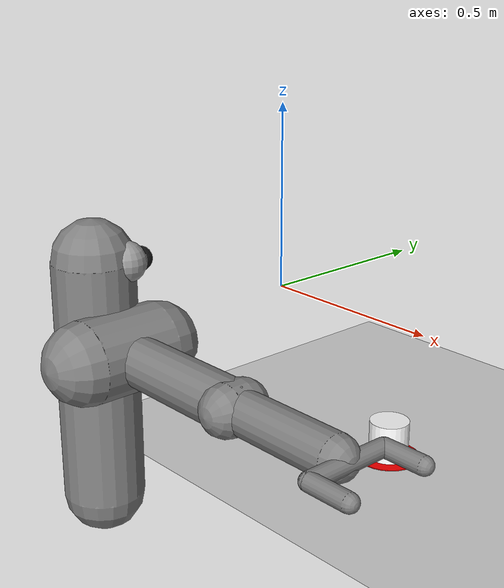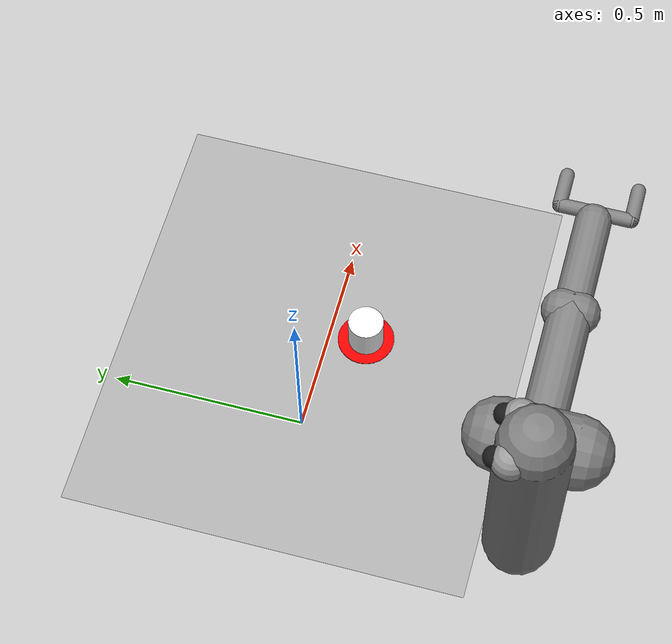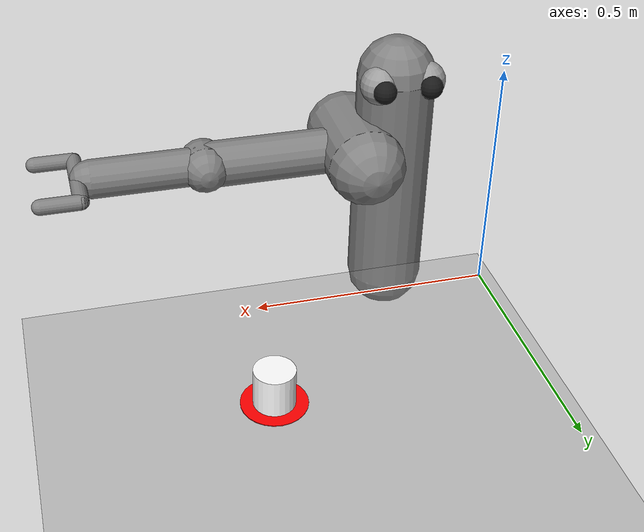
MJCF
<mujoco model="arm3d">
    <compiler inertiafromgeom="true" angle="radian" coordinate="local"/>
    <option timestep="0.01" gravity="0 0 0" iterations="20" integrator="Euler"/>

    <default>
        <joint armature='0.04' damping="1" limited="true"/>
        <geom friction=".8 .1 .1" density="300" margin="0.002" condim="1" contype="0" conaffinity="0"/>
    </default>
    <asset>
        <texture type="skybox" builtin="checker" rgb1="1 1 1" rgb2="1 1 1"
                 width="256" height="256"/>
        <texture name="texgeom" type="cube" builtin="flat" mark="cross" width="127" height="1278" rgb1="0.8 0.6 0.4"
                 rgb2="0.8 0.6 0.4" markrgb="1 1 1" random="0.01"/>
        <texture name="texplane" type="2d" builtin="checker" rgb1=".5 .5 .5" rgb2=".5 .5 .5" width="100" height="100"/>
        <texture name="texplane_show" type="2d" builtin="checker" rgb1="0 0 0" rgb2="0.9 0.9 0.9" width="100"
                 height="100"/>
        <material name='MatPlane' texture="texplane" shininess="1" texrepeat="30 30" specular="1" reflectance="0.5"/>
        <material name='geom' texture="texgeom" texuniform="true"/>
    </asset>

    <worldbody>
        <light diffuse=".5 .5 .5" pos="0 0 3" dir="0 0 -1"/>
        <geom name="table" type="plane" pos="0 0.5 -0.325" size="1 1 0.1" contype="1" conaffinity="1"/>

        <body name="r_shoulder_pan_link" pos="0 -0.6 0">
            <geom name="e1" type="sphere" rgba="0.6 0.6 0.6 1" pos="-0.06 0.05 0.2" size="0.05"/>
            <geom name="e2" type="sphere" rgba="0.6 0.6 0.6 1" pos=" 0.06 0.05 0.2" size="0.05"/>
            <geom name="e1p" type="sphere" rgba="0.1 0.1 0.1 1" pos="-0.06 0.09 0.2" size="0.03"/>
            <geom name="e2p" type="sphere" rgba="0.1 0.1 0.1 1" pos=" 0.06 0.09 0.2" size="0.03"/>
            <geom name="sp" type="capsule" fromto="0 0 -0.4 0 0 0.2" size="0.1"/>
            <joint name="r_shoulder_pan_joint" type="hinge" pos="0 0 0" axis="0 0 1" range="-2.2854 2.0" damping="1.0"/>

            <body name="r_shoulder_lift_link" pos="0.1 0 0">
                <geom name="sl" type="capsule" fromto="0 -0.1 0 0 0.1 0" size="0.1"/>
                <joint name="r_shoulder_lift_joint" type="hinge" pos="0 0 0" axis="0 1 0" range="-0.5236 1.3963"
                       damping="1.0"/>

                <body name="r_upper_arm_roll_link" pos="0 0 0">
                    <geom name="uar" type="capsule" fromto="-0.1 0 0 0.1 0 0" size="0.02"/>
                    <joint name="r_upper_arm_roll_joint" type="hinge" pos="0 0 0" axis="1 0 0" range="-1.5 1.7"
                           damping="0.1"/>

                    <body name="r_upper_arm_link" pos="0 0 0">
                        <geom name="ua" type="capsule" fromto="0 0 0 0.4 0 0" size="0.06"/>

                        <body name="r_elbow_flex_link" pos="0.4 0 0">
                            <geom name="ef" type="capsule" fromto="0 -0.02 0 0.0 0.02 0" size="0.06"/>
                            <joint name="r_elbow_flex_joint" type="hinge" pos="0 0 0" axis="0 1 0" range="-2.3213 0"
                                   damping="0.1"/>

                            <body name="r_forearm_roll_link" pos="0 0 0">
                                <geom name="fr" type="capsule" fromto="-0.1 0 0 0.1 0 0" size="0.02"/>
                                <joint name="r_forearm_roll_joint" type="hinge" limited="true" pos="0 0 0" axis="1 0 0"
                                       damping=".1" range="-1.5 1.5"/>

                                <body name="r_forearm_link" pos="0 0 0">
                                    <geom name="fa" type="capsule" fromto="0 0 0 0.291 0 0" size="0.05"/>

                                    <body name="r_wrist_flex_link" pos="0.321 0 0">
                                        <geom name="wf" type="capsule" fromto="0 -0.02 0 0 0.02 0" size="0.01"/>
                                        <joint name="r_wrist_flex_joint" type="hinge" pos="0 0 0" axis="0 1 0"
                                               range="-1.094 0" damping=".1"/>

                                        <body name="r_wrist_roll_link" pos="0 0 0">
                                            <joint name="r_wrist_roll_joint" type="hinge" pos="0 0 0" limited="true"
                                                   axis="1 0 0" damping="0.1" range="-1.5 1.5"/>
                                            <body name="tips_arm" pos="0 0 0">
                                                <geom name="tip_arml" type="sphere" pos="0.1 -0.1 0." size="0.01"/>
                                                <geom name="tip_armr" type="sphere" pos="0.1 0.1 0." size="0.01"/>
                                            </body>
                                            <geom type="capsule" fromto="0 -0.1 0. 0.0 +0.1 0" size="0.02" contype="1"
                                                  conaffinity="1"/>
                                            <geom type="capsule" fromto="0 -0.1 0. 0.1 -0.1 0" size="0.02" contype="1"
                                                  conaffinity="1"/>
                                            <geom type="capsule" fromto="0 +0.1 0. 0.1 +0.1 0." size="0.02" contype="1"
                                                  conaffinity="1"/>
                                        </body>
                                    </body>
                                </body>
                            </body>
                        </body>
                    </body>
                </body>
            </body>
        </body>

        <body name="object" pos="0.45 -0.05 -0.275">
            <geom rgba="1 1 1 0" type="sphere" size="0.05 0.05 0.05" density="0.00001" conaffinity="0"/>
            <geom rgba="1 1 1 1" type="cylinder" size="0.05 0.05 0.05" density="0.00001" contype="1" conaffinity="0"/>
            <joint name="obj_slidey" type="slide" pos="0 0 0" axis="0 1 0" range="-10.3213 10.3" damping="0.5"/>
            <joint name="obj_slidex" type="slide" pos="0 0 0" axis="1 0 0" range="-10.3213 10.3" damping="0.5"/>
        </body>

        <body name="goal" pos="0.45 -0.05 -0.3230">
            <geom rgba="1 0 0 1" type="cylinder" size="0.08 0.001 0.1" density='0.00001' contype="0" conaffinity="0"/>
            <joint name="goal_slidey" type="slide" pos="0 0 0" axis="0 1 0" range="-10.3213 10.3" damping="0.5"/>
            <joint name="goal_slidex" type="slide" pos="0 0 0" axis="1 0 0" range="-10.3213 10.3" damping="0.5"/>
        </body>
    </worldbody>

    <actuator>
        <motor joint="r_shoulder_pan_joint" ctrlrange="-2.0 2.0" ctrllimited="true"/>
        <motor joint="r_shoulder_lift_joint" ctrlrange="-2.0 2.0" ctrllimited="true"/>
        <motor joint="r_upper_arm_roll_joint" ctrlrange="-2.0 2.0" ctrllimited="true"/>
        <motor joint="r_elbow_flex_joint" ctrlrange="-2.0 2.0" ctrllimited="true"/>
        <motor joint="r_forearm_roll_joint" ctrlrange="-2.0 2.0" ctrllimited="true"/>
        <motor joint="r_wrist_flex_joint" ctrlrange="-2.0 2.0" ctrllimited="true"/>
        <motor joint="r_wrist_roll_joint" ctrlrange="-2.0 2.0" ctrllimited="true"/>
    </actuator>
</mujoco>
